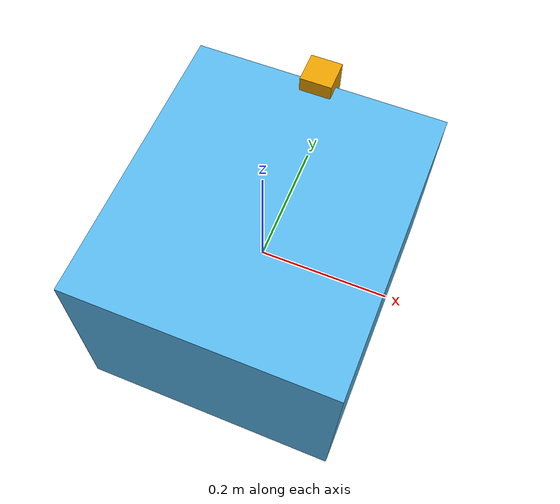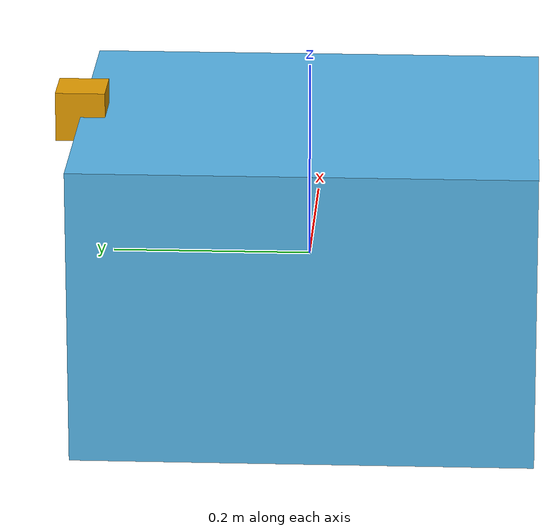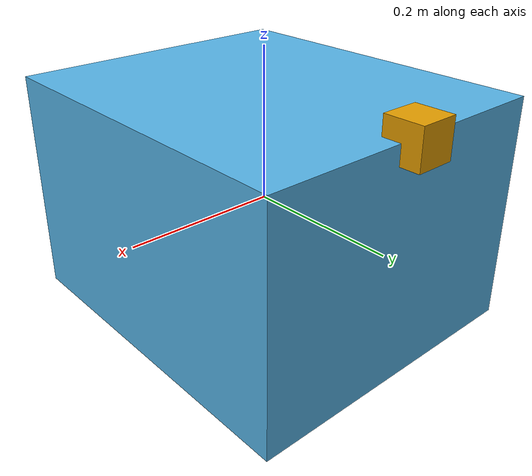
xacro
<?xml version="1.0"?>
<robot name="red_herring" xmlns:xacro="http://www.ros.org/wiki/xacro">

  <!--General Properties-->
  <xacro:property name="pi" value="3.14159"/>
  <xacro:arg name="use_simple_mesh" default="true"/>

  <!--RedHerring Collision approximations-->
  <xacro:property name="rh_x_len" value="0.40"/>
  <xacro:property name="rh_y_len" value="0.46"/>
  <xacro:property name="rh_z_len" value="0.30"/>

  <!--Top-Camera Collision approximations-->
  <xacro:property name="cam_x_len" value="0.05"/>
  <xacro:property name="cam_y_len" value="0.05"/>
  <xacro:property name="cam_z_len" value="0.05"/>

  <!--Top Camera sensor settings-->
  <xacro:property name="top_camera_link_name" value="top_camera_link"/>
  <xacro:arg name="fps" default="20"/>
  <xacro:arg name="fov_degrees" default="80"/>
  <xacro:arg name="fov_rad" default="${fov_degrees*8.727e-3}"/>
  <xacro:arg name="height" default="600"/>
  <xacro:arg name="width" default="800"/>
  <xacro:arg name="color_format" default="R8G8B8"/>
  <xacro:arg name="clip_near" default="0.02"/>
  <xacro:arg name="clip_far" default="300"/>

  <!--ROS Topic Names-->
  <xacro:arg name="top_camera_topic" default="camera/one"/>
  <xacro:arg name="image_topic_name" default="image"/>

  <joint name="camera_joint" type="fixed">
    <parent link="red_herring"/>
    <child link="${top_camera_link_name}"/>
    <origin xyz="0 ${rh_y_len/2} ${rh_z_len/2}" rpy="0 0 ${pi/2}"/>
  </joint>

  <link name="${top_camera_link_name}">
    <visual>
      <origin xyz="0 0 0" rpy="0 0 0"/>
      <geometry>
        <box size="${cam_x_len} ${cam_y_len} ${cam_z_len}"/>
      </geometry>
    </visual>
    <collision>
      <origin xyz="0 0 0" rpy="0 0 0"/>
      <geometry>
        <box size="${cam_x_len} ${cam_y_len} ${cam_z_len}"/>
      </geometry>
    </collision>
    <inertial>
      <mass value="1e-3"/>
      <origin xyz="0 0 0" rpy="0 0 0"/>
      <inertia ixx="1e-4" ixy="0" ixz="0"
                       iyy="1e-4" iyz="0"
                               izz="1e-4"/>
    </inertial>
  </link>

  <link name="red_herring">
    <visual>
      <origin rpy="0 0 0" xyz="0 0 0"/>
      <geometry>
        <xacro:if value="$(arg use_simple_mesh)">
          <box size="${rh_x_len} ${rh_y_len} ${rh_z_len}"/>
        </xacro:if>
        <xacro:unless value="$(arg use_simple_mesh)">
          <mesh filename="$(find Gazebo_models)/models/red_herring/red_herring.dae"/>
        </xacro:unless>
      </geometry>
    </visual>
    <collision>
      <origin rpy="0 0 0" xyz="0 0 0"/>
      <geometry>
        <box size="${rh_x_len} ${rh_y_len} ${rh_z_len}"/>
      </geometry>
    </collision>
    <inertial>
      <origin rpy="0 0 0" xyz="0 0 ${rh_z_len/2}"/>
      <mass value="10"/>
      <inertia ixx="1" ixy="0" ixz="0"
                       iyy="1" iyz="0"
                               izz="1"/>
    </inertial>
  </link>

  <gazebo reference="${top_camera_link_name}">
    <sensor type="camera" name="${top_camera_link_name}">
      <pose>0 0 0 0 0 0</pose>
      <update_rate>$(arg fps)</update_rate>
      <camera name="top">
        <horizontal_fov>$(arg fov_rad)</horizontal_fov>
        <image>
          <width>$(arg width)</width>
          <height>$(arg height)</height>
          <format>${(arg color_format)</format>
        </image>
        <clip>
          <near>$(arg clip_near)</near>
          <far>$(arg clip_far)</far>
        </clip>
        <noise>
          <type>gaussian</type>
          <mean>0</mean>
          <stddev>0.007</stddev>
        </noise>
      </camera>
      <plugin name="camera_top_controller" filename="libgazebo_ros_camera.so">
        <alwaysOn>true</alwaysOn>
        <updateRate>0</updateRate>
        <cameraName>$(arg top_camera_topic)</cameraName>
        <imageTopicName>$(arg image_topic_name)</imageTopicName>
        <cameraInfoTopicName>camera_top_info</cameraInfoTopicName>
        <frameName>${top_camera_link_name}</frameName>
        <hackBaseLine>0.07</hackBaseLine>
        <distortionK1>0</distortionK1>
        <distortionK2>0</distortionK2>
        <distortionK3>0</distortionK3>
        <distortianT1>0</distortianT1>
        <distortionT2>0</distortionT2>
      </plugin>
    </sensor>
  </gazebo>

</robot>
